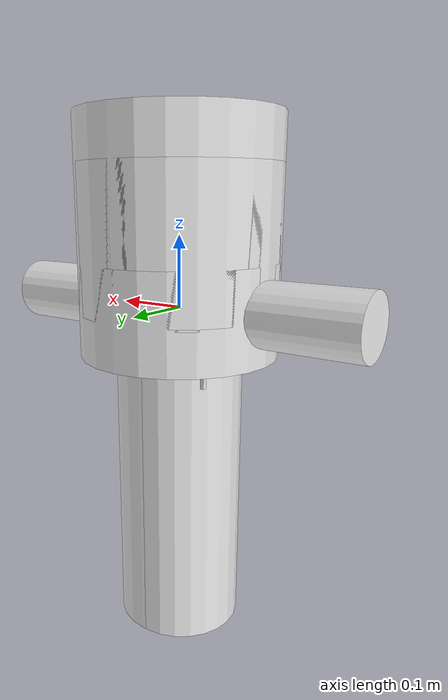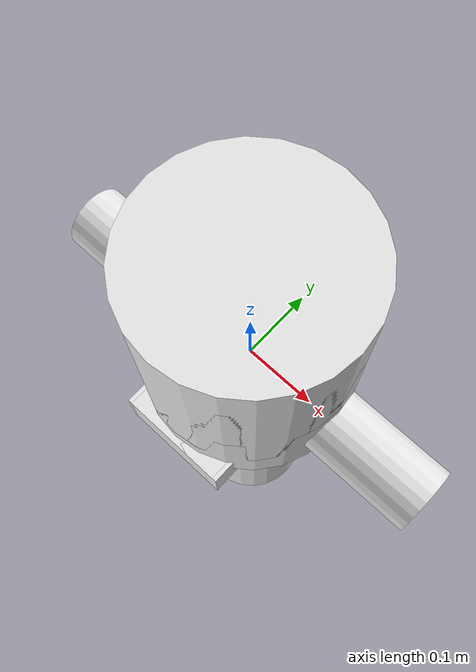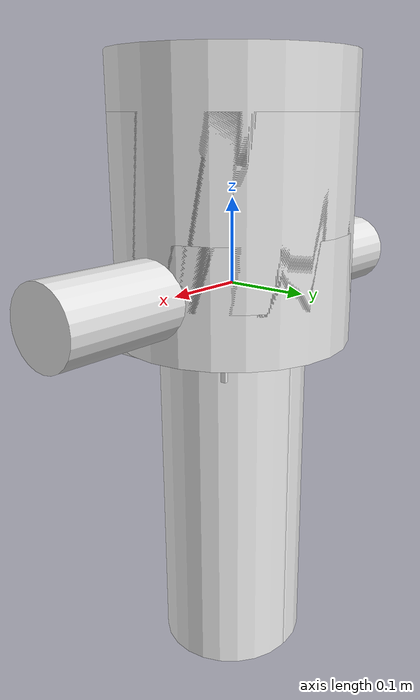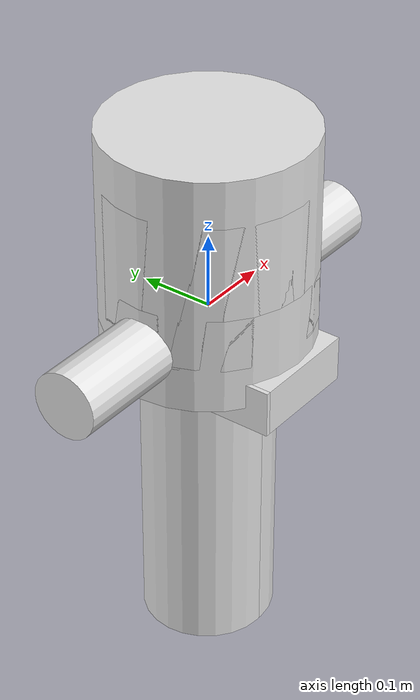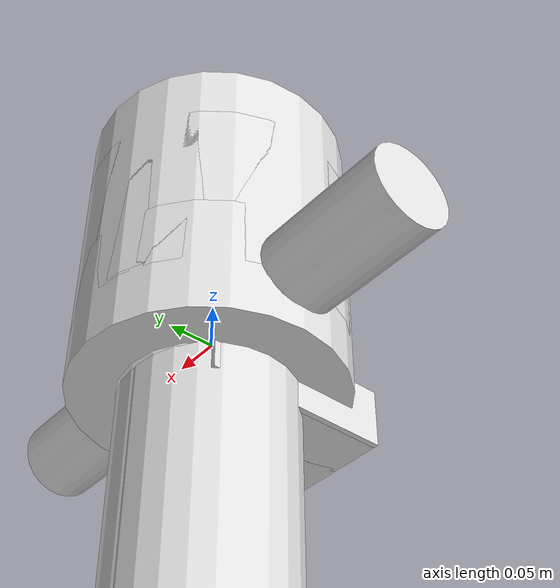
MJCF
<mujoco model="my_model">
    <compiler angle="radian" />
    <size njmax="500" nconmax="100" />
    <worldbody>
        <body name="baseTransX" pos="0 0 0">
            <inertial pos="0 0 0" mass="1" diaginertia="1 1 1" />
            <joint name="baseTransX" pos="0 0 0" axis="1 0 0" type="slide" limited="true" range="0 30" />
            <body name="baseTransY" pos="0 0 0">
                <inertial pos="0 0 0" mass="1" diaginertia="1 1 1" />
                <joint name="baseTransY" pos="0 0 0" axis="0 1 0" type="slide" limited="true" range="0 30" />
                <body name="baseTransZ" pos="0 0 0">
                    <inertial pos="0 0 0" mass="1" diaginertia="1 1 1" />
                    <joint name="baseTransZ" pos="0 0 0" axis="0 0 1" type="slide" limited="true" range="0 30" />
                    <body name="baseRotX" pos="0 0 0">
                        <inertial pos="0 0 0" mass="1" diaginertia="1 1 1" />
                        <joint name="baseRotX" pos="0 0 0" axis="1 0 0" limited="true" range="-3.14 3.14" />
                        <body name="baseRotY" pos="0 0 0">
                            <inertial pos="0 0 0" mass="1" diaginertia="1 1 1" />
                            <joint name="baseRotY" pos="0 0 0" axis="0 1 0" limited="true" range="-3.14 3.14" />
                            <body name="baseRotZ" pos="0 0 0">
                                <inertial pos="0 0 0" mass="1" diaginertia="1 1 1" />
                                <joint name="baseRotZ" pos="0 0 0" axis="0 0 1" limited="true" range="-3.14 3.14" />
                                <geom size="0.14 0.066" type="cylinder" contype="0" conaffinity="0" group="1" rgba="0.9 0.9 0.9 1" />
                                <body name="lHipTransX" pos="0 0 0">
                                    <inertial pos="0 0 0" mass="1" diaginertia="1 1 1" />
                                    <joint name="lHipTransX" pos="0 0 0" axis="1 0 0" type="slide" limited="true" range="0 1" />
                                    <body name="lHipRotX" pos="0 0 0">
                                        <inertial pos="0 0 0" mass="1" diaginertia="1 1 1" />
                                        <joint name="lHipRotX" pos="0 0 0" axis="1 0 0" limited="true" range="-3.14 3.14" />
                                        <body name="lHipRotY" pos="0 0 0">
                                            <inertial pos="0 0 0" mass="1" diaginertia="1 1 1" />
                                            <joint name="lHipRotY" pos="0 0 0" axis="0 1 0" limited="true" range="-3.14 3.14" />
                                            <body name="lHipRotZ" pos="0 0 0">
                                                <inertial pos="0 0 0" mass="1" diaginertia="1 1 1" />
                                                <joint name="lHipRotZ" pos="0 0 0" axis="0 0 1" limited="true" range="-3.14 3.14" />
                                                <geom size="0.0871 0.225" pos="-0.00375 0 -0.25255" type="cylinder" contype="0" conaffinity="0" group="1" rgba="0.9 0.9 0.9 1" />
                                                <body name="lKneeTransZ" pos="0 0 0">
                                                    <inertial pos="0 0 0" mass="1" diaginertia="1 1 1" />
                                                    <joint name="lKneeTransZ" pos="0 0 0" axis="0 0 1" type="slide" limited="true" range="0 1" />
                                                    <body name="lKneeRotX" pos="0 0 0">
                                                        <inertial pos="0 0 0" mass="1" diaginertia="1 1 1" />
                                                        <joint name="lKneeRotX" pos="0 0 0" axis="1 0 0" limited="true" range="-3.14 3.14" />
                                                        <body name="lKneeRotY" pos="0 0 0">
                                                            <inertial pos="0 0 0" mass="1" diaginertia="1 1 1" />
                                                            <joint name="lKneeRotY" pos="0 0 0" axis="0 1 0" limited="true" range="-3.14 3.14" />
                                                            <body name="lKneeRotZ" pos="0 0 0">
                                                                <inertial pos="0 0 0" mass="1" diaginertia="1 1 1" />
                                                                <joint name="lKneeRotZ" pos="0 0 0" axis="0 0 1" limited="true" range="-3.14 3.14" />
                                                                <geom size="0.0685 0.1749" pos="-0.00375 0 -0.20357" type="cylinder" contype="0" conaffinity="0" group="1" rgba="0.9 0.9 0.9 1" />
                                                                <body name="lAnkleTransX" pos="0 0 0">
                                                                    <inertial pos="0 0 0" mass="1" diaginertia="1 1 1" />
                                                                    <joint name="lAnkleTransX" pos="0 0 0" axis="1 0 0" type="slide" limited="true" range="0 1" />
                                                                    <body name="lAnkleTransY" pos="0 0 0">
                                                                        <inertial pos="0 0 0" mass="1" diaginertia="1 1 1" />
                                                                        <joint name="lAnkleTransY" pos="0 0 0" axis="0 1 0" type="slide" limited="true" range="0 1" />
                                                                        <body name="lAnkleTransZ" pos="0 0 0">
                                                                            <inertial pos="0 0 0" mass="1" diaginertia="1 1 1" />
                                                                            <joint name="lAnkleTransZ" pos="0 0 0" axis="0 0 1" type="slide" limited="true" range="0 1" />
                                                                            <body name="lAnkleRotX" pos="0 0 0">
                                                                                <inertial pos="0 0 0" mass="1" diaginertia="1 1 1" />
                                                                                <joint name="lAnkleRotX" pos="0 0 0" axis="1 0 0" limited="true" range="-3.14 3.14" />
                                                                                <body name="lAnkleRotY" pos="0 0 0">
                                                                                    <inertial pos="0 0 0" mass="1" diaginertia="1 1 1" />
                                                                                    <joint name="lAnkleRotY" pos="0 0 0" axis="0 1 0" limited="true" range="-3.14 3.14" />
                                                                                    <body name="lAnkleRotZ" pos="0 0 0">
                                                                                        <inertial pos="0 0 0" mass="1" diaginertia="1 1 1" />
                                                                                        <joint name="lAnkleRotZ" pos="0 0 0" axis="0 0 1" limited="true" range="-3.14 3.14" />
                                                                                        <geom size="0.1 0.0744 0.0315" pos="-0.00303 -0.04782 -0.06326" quat="0.707105 0 0 0.707108" type="box" contype="0" conaffinity="0" group="1" rgba="0.9 0.9 0.9 1" />
                                                                                        <body name="lToeTransY" pos="0 0 0">
                                                                                            <inertial pos="0 0 0" mass="1" diaginertia="1 1 1" />
                                                                                            <joint name="lToeTransY" pos="0 0 0" axis="0 1 0" type="slide" limited="true" range="0 1" />
                                                                                            <body name="lToeTransZ" pos="0 0 0">
                                                                                                <inertial pos="0 0 0" mass="1" diaginertia="1 1 1" />
                                                                                                <joint name="lToeTransZ" pos="0 0 0" axis="0 0 1" type="slide" limited="true" range="0 1" />
                                                                                                <body name="lToeRotX" pos="0 0 0">
                                                                                                    <inertial pos="0 0 0" mass="1" diaginertia="1 1 1" />
                                                                                                    <joint name="lToeRotX" pos="0 0 0" axis="1 0 0" limited="true" range="-3.14 3.14" />
                                                                                                    <body name="lToeRotY" pos="0 0 0">
                                                                                                        <inertial pos="0 0 0" mass="1" diaginertia="1 1 1" />
                                                                                                        <joint name="lToeRotY" pos="0 0 0" axis="0 1 0" limited="true" range="-3.14 3.14" />
                                                                                                        <body name="lToeRotZ" pos="0 0 0">
                                                                                                            <inertial pos="0 0 0" mass="1" diaginertia="1 1 1" />
                                                                                                            <joint name="lToeRotZ" pos="0 0 0" axis="0 0 1" limited="true" range="-3.14 3.14" />
                                                                                                            <geom size="0.025 0.0744 0.0315" pos="-0.00303 -0.02629 0.00418" quat="0.707105 0 0 0.707108" type="box" contype="0" conaffinity="0" group="1" rgba="0.9 0.9 0.9 1" />
                                                                                                        </body>
                                                                                                    </body>
                                                                                                </body>
                                                                                            </body>
                                                                                        </body>
                                                                                    </body>
                                                                                </body>
                                                                            </body>
                                                                        </body>
                                                                    </body>
                                                                </body>
                                                            </body>
                                                        </body>
                                                    </body>
                                                </body>
                                            </body>
                                        </body>
                                    </body>
                                </body>
                                <body name="pelvisTransZ" pos="0 0 0">
                                    <inertial pos="0 0 0" mass="1" diaginertia="1 1 1" />
                                    <joint name="pelvisTransZ" pos="0 0 0" axis="0 0 1" type="slide" limited="true" range="0 1" />
                                    <body name="pelvisRotX" pos="0 0 0">
                                        <inertial pos="0 0 0" mass="1" diaginertia="1 1 1" />
                                        <joint name="pelvisRotX" pos="0 0 0" axis="1 0 0" limited="true" range="-3.14 3.14" />
                                        <body name="pelvisRotY" pos="0 0 0">
                                            <inertial pos="0 0 0" mass="1" diaginertia="1 1 1" />
                                            <joint name="pelvisRotY" pos="0 0 0" axis="0 1 0" limited="true" range="-3.14 3.14" />
                                            <body name="pelvisRotZ" pos="0 0 0">
                                                <inertial pos="0 0 0" mass="1" diaginertia="1 1 1" />
                                                <joint name="pelvisRotZ" pos="0 0 0" axis="0 0 1" limited="true" range="-3.14 3.14" />
                                                <geom size="0.14 0.099" pos="0 0 0.0951" type="cylinder" contype="0" conaffinity="0" group="1" rgba="0.9 0.9 0.9 1" />
                                                <body name="torsoTransX" pos="0 0 0">
                                                    <inertial pos="0 0 0" mass="1" diaginertia="1 1 1" />
                                                    <joint name="torsoTransX" pos="0 0 0" axis="1 0 0" type="slide" limited="true" range="0 1" />
                                                    <body name="torsoTransY" pos="0 0 0">
                                                        <inertial pos="0 0 0" mass="1" diaginertia="1 1 1" />
                                                        <joint name="torsoTransY" pos="0 0 0" axis="0 1 0" type="slide" limited="true" range="0 1" />
                                                        <body name="torsoTransZ" pos="0 0 0">
                                                            <inertial pos="0 0 0" mass="1" diaginertia="1 1 1" />
                                                            <joint name="torsoTransZ" pos="0 0 0" axis="0 0 1" type="slide" limited="true" range="0 1" />
                                                            <body name="torsoRotX" pos="0 0 0">
                                                                <inertial pos="0 0 0" mass="1" diaginertia="1 1 1" />
                                                                <joint name="torsoRotX" pos="0 0 0" axis="1 0 0" limited="true" range="-3.14 3.14" />
                                                                <body name="torsoRotY" pos="0 0 0">
                                                                    <inertial pos="0 0 0" mass="1" diaginertia="1 1 1" />
                                                                    <joint name="torsoRotY" pos="0 0 0" axis="0 1 0" limited="true" range="-3.14 3.14" />
                                                                    <body name="torsoRotZ" pos="0 0 0">
                                                                        <inertial pos="0 0 0" mass="1" diaginertia="1 1 1" />
                                                                        <joint name="torsoRotZ" pos="0 0 0" axis="0 0 1" limited="true" range="-3.14 3.14" />
                                                                        <geom size="0.14 0.132" pos="0 0 0.12507" type="cylinder" contype="0" conaffinity="0" group="1" rgba="0.9 0.9 0.9 1" />
                                                                        <body name="linnerShoulderTransX" pos="0 0 0">
                                                                            <inertial pos="0 0 0" mass="1" diaginertia="1 1 1" />
                                                                            <joint name="linnerShoulderTransX" pos="0 0 0" axis="1 0 0" type="slide" limited="true" range="0 1" />
                                                                            <body name="linnerShoulderTransY" pos="0 0 0">
                                                                                <inertial pos="0 0 0" mass="1" diaginertia="1 1 1" />
                                                                                <joint name="linnerShoulderTransY" pos="0 0 0" axis="0 1 0" type="slide" limited="true" range="0 1" />
                                                                                <body name="linnerShoulderTransZ" pos="0 0 0">
                                                                                    <inertial pos="0 0 0" mass="1" diaginertia="1 1 1" />
                                                                                    <joint name="linnerShoulderTransZ" pos="0 0 0" axis="0 0 1" type="slide" limited="true" range="0 1" />
                                                                                    <body name="linnerShoulderRotX" pos="0 0 0">
                                                                                        <inertial pos="0 0 0" mass="1" diaginertia="1 1 1" />
                                                                                        <joint name="linnerShoulderRotX" pos="0 0 0" axis="1 0 0" limited="true" range="-3.14 3.14" />
                                                                                        <body name="linnerShoulderRotY" pos="0 0 0">
                                                                                            <inertial pos="0 0 0" mass="1" diaginertia="1 1 1" />
                                                                                            <joint name="linnerShoulderRotY" pos="0 0 0" axis="0 1 0" limited="true" range="-3.14 3.14" />
                                                                                            <body name="linnerShoulderRotZ" pos="0 0 0">
                                                                                                <inertial pos="0 0 0" mass="1" diaginertia="1 1 1" />
                                                                                                <joint name="linnerShoulderRotZ" pos="0 0 0" axis="0 0 1" limited="true" range="-3.14 3.14" />
                                                                                                <body name="lShoulderTransX" pos="0 0 0">
                                                                                                    <inertial pos="0 0 0" mass="1" diaginertia="1 1 1" />
                                                                                                    <joint name="lShoulderTransX" pos="0 0 0" axis="1 0 0" type="slide" limited="true" range="0 1" />
                                                                                                    <body name="lShoulderRotX" pos="0 0 0">
                                                                                                        <inertial pos="0 0 0" mass="1" diaginertia="1 1 1" />
                                                                                                        <joint name="lShoulderRotX" pos="0 0 0" axis="1 0 0" limited="true" range="-3.14 3.14" />
                                                                                                        <body name="lShoulderRotY" pos="0 0 0">
                                                                                                            <inertial pos="0 0 0" mass="1" diaginertia="1 1 1" />
                                                                                                            <joint name="lShoulderRotY" pos="0 0 0" axis="0 1 0" limited="true" range="-3.14 3.14" />
                                                                                                            <body name="lShoulderRotZ" pos="0 0 0">
                                                                                                                <inertial pos="0 0 0" mass="1" diaginertia="1 1 1" />
                                                                                                                <joint name="lShoulderRotZ" pos="0 0 0" axis="0 0 1" limited="true" range="-3.14 3.14" />
                                                                                                                <geom size="0.05617" pos="-0.00282 -3e-05 0.00437" contype="0" conaffinity="0" group="1" rgba="0.9 0.9 0.9 1" />
                                                                                                                <geom size="0.045 0.12375" pos="0.15745 0 0.00437" quat="0.707105 0 0.707108 0" type="cylinder" contype="0" conaffinity="0" group="1" rgba="0.9 0.9 0.9 1" />
                                                                                                                <body name="lElbowTransX" pos="0 0 0">
                                                                                                                    <inertial pos="0 0 0" mass="1" diaginertia="1 1 1" />
                                                                                                                    <joint name="lElbowTransX" pos="0 0 0" axis="1 0 0" type="slide" limited="true" range="0 1" />
                                                                                                                    <body name="lElbowRotX" pos="0 0 0">
                                                                                                                        <inertial pos="0 0 0" mass="1" diaginertia="1 1 1" />
                                                                                                                        <joint name="lElbowRotX" pos="0 0 0" axis="1 0 0" limited="true" range="-3.14 3.14" />
                                                                                                                        <body name="lElbowRotY" pos="0 0 0">
                                                                                                                            <inertial pos="0 0 0" mass="1" diaginertia="1 1 1" />
                                                                                                                            <joint name="lElbowRotY" pos="0 0 0" axis="0 1 0" limited="true" range="-3.14 3.14" />
                                                                                                                            <body name="lElbowRotZ" pos="0 0 0">
                                                                                                                                <inertial pos="0 0 0" mass="1" diaginertia="1 1 1" />
                                                                                                                                <joint name="lElbowRotZ" pos="0 0 0" axis="0 0 1" limited="true" range="-3.14 3.14" />
                                                                                                                                <geom size="0.04 0.1085" pos="0.13503 0 0.00437" quat="0.707105 0 0.707108 0" type="cylinder" contype="0" conaffinity="0" group="1" rgba="0.9 0.9 0.9 1" />
                                                                                                                                <body name="lWristTransX" pos="0 0 0">
                                                                                                                                    <inertial pos="0 0 0" mass="1" diaginertia="1 1 1" />
                                                                                                                                    <joint name="lWristTransX" pos="0 0 0" axis="1 0 0" type="slide" limited="true" range="0 1" />
                                                                                                                                    <body name="lWristTransY" pos="0 0 0">
                                                                                                                                        <inertial pos="0 0 0" mass="1" diaginertia="1 1 1" />
                                                                                                                                        <joint name="lWristTransY" pos="0 0 0" axis="0 1 0" type="slide" limited="true" range="0 1" />
                                                                                                                                        <body name="lWristTransZ" pos="0 0 0">
                                                                                                                                            <inertial pos="0 0 0" mass="1" diaginertia="1 1 1" />
                                                                                                                                            <joint name="lWristTransZ" pos="0 0 0" axis="0 0 1" type="slide" limited="true" range="0 1" />
                                                                                                                                            <body name="lWristRotX" pos="0 0 0">
                                                                                                                                                <inertial pos="0 0 0" mass="1" diaginertia="1 1 1" />
                                                                                                                                                <joint name="lWristRotX" pos="0 0 0" axis="1 0 0" limited="true" range="-3.14 3.14" />
                                                                                                                                                <body name="lWristRotY" pos="0 0 0">
                                                                                                                                                    <inertial pos="0 0 0" mass="1" diaginertia="1 1 1" />
                                                                                                                                                    <joint name="lWristRotY" pos="0 0 0" axis="0 1 0" limited="true" range="-3.14 3.14" />
                                                                                                                                                    <body name="lWristRotZ" pos="0 0 0">
                                                                                                                                                        <inertial pos="0 0 0" mass="1" diaginertia="1 1 1" />
                                                                                                                                                        <joint name="lWristRotZ" pos="0 0 0" axis="0 0 1" limited="true" range="-3.14 3.14" />
                                                                                                                                                        <geom size="0.035 0.05 0.0125" pos="0.08708 0 0.00437" quat="0.707105 0 0 0.707108" type="box" contype="0" conaffinity="0" group="1" rgba="0.9 0.9 0.9 1" />
                                                                                                                                                    </body>
                                                                                                                                                </body>
                                                                                                                                            </body>
                                                                                                                                        </body>
                                                                                                                                    </body>
                                                                                                                                </body>
                                                                                                                            </body>
                                                                                                                        </body>
                                                                                                                    </body>
                                                                                                                </body>
                                                                                                            </body>
                                                                                                        </body>
                                                                                                    </body>
                                                                                                </body>
                                                                                            </body>
                                                                                        </body>
                                                                                    </body>
                                                                                </body>
                                                                            </body>
                                                                        </body>
                                                                        <body name="neckTransZ" pos="0 0 0">
                                                                            <inertial pos="0 0 0" mass="1" diaginertia="1 1 1" />
                                                                            <joint name="neckTransZ" pos="0 0 0" axis="0 0 1" type="slide" limited="true" range="0 1" />
                                                                            <body name="neckRotX" pos="0 0 0">
                                                                                <inertial pos="0 0 0" mass="1" diaginertia="1 1 1" />
                                                                                <joint name="neckRotX" pos="0 0 0" axis="1 0 0" limited="true" range="-3.14 3.14" />
                                                                                <body name="neckRotY" pos="0 0 0">
                                                                                    <inertial pos="0 0 0" mass="1" diaginertia="1 1 1" />
                                                                                    <joint name="neckRotY" pos="0 0 0" axis="0 1 0" limited="true" range="-3.14 3.14" />
                                                                                    <body name="neckRotZ" pos="0 0 0">
                                                                                        <inertial pos="0 0 0" mass="1" diaginertia="1 1 1" />
                                                                                        <joint name="neckRotZ" pos="0 0 0" axis="0 0 1" limited="true" range="-3.14 3.14" />
                                                                                        <geom size="0.056 0.022" pos="0 0 0.04533" type="cylinder" contype="0" conaffinity="0" group="1" rgba="0.9 0.9 0.9 1" />
                                                                                        <body name="headTransY" pos="0 0 0">
                                                                                            <inertial pos="0 0 0" mass="1" diaginertia="1 1 1" />
                                                                                            <joint name="headTransY" pos="0 0 0" axis="0 1 0" type="slide" limited="true" range="0 1" />
                                                                                            <body name="headTransZ" pos="0 0 0">
                                                                                                <inertial pos="0 0 0" mass="1" diaginertia="1 1 1" />
                                                                                                <joint name="headTransZ" pos="0 0 0" axis="0 0 1" type="slide" limited="true" range="0 1" />
                                                                                                <body name="headRotX" pos="0 0 0">
                                                                                                    <inertial pos="0 0 0" mass="1" diaginertia="1 1 1" />
                                                                                                    <joint name="headRotX" pos="0 0 0" axis="1 0 0" limited="true" range="-3.14 3.14" />
                                                                                                    <body name="headRotY" pos="0 0 0">
                                                                                                        <inertial pos="0 0 0" mass="1" diaginertia="1 1 1" />
                                                                                                        <joint name="headRotY" pos="0 0 0" axis="0 1 0" limited="true" range="-3.14 3.14" />
                                                                                                        <body name="headRotZ" pos="0 0 0">
                                                                                                            <inertial pos="0 0 0" mass="1" diaginertia="1 1 1" />
                                                                                                            <joint name="headRotZ" pos="0 0 0" axis="0 0 1" limited="true" range="-3.14 3.14" />
                                                                                                            <geom size="0.13" pos="0 0.00075 0.02589" contype="0" conaffinity="0" group="1" rgba="0.9 0.9 0.9 1" />
                                                                                                        </body>
                                                                                                    </body>
                                                                                                </body>
                                                                                            </body>
                                                                                        </body>
                                                                                    </body>
                                                                                </body>
                                                                            </body>
                                                                        </body>
                                                                        <body name="rinnerShoulderTransX" pos="0 0 0">
                                                                            <inertial pos="0 0 0" mass="1" diaginertia="1 1 1" />
                                                                            <joint name="rinnerShoulderTransX" pos="0 0 0" axis="1 0 0" type="slide" limited="true" range="0 1" />
                                                                            <body name="rinnerShoulderTransY" pos="0 0 0">
                                                                                <inertial pos="0 0 0" mass="1" diaginertia="1 1 1" />
                                                                                <joint name="rinnerShoulderTransY" pos="0 0 0" axis="0 1 0" type="slide" limited="true" range="0 1" />
                                                                                <body name="rinnerShoulderTransZ" pos="0 0 0">
                                                                                    <inertial pos="0 0 0" mass="1" diaginertia="1 1 1" />
                                                                                    <joint name="rinnerShoulderTransZ" pos="0 0 0" axis="0 0 1" type="slide" limited="true" range="0 1" />
                                                                                    <body name="rinnerShoulderRotX" pos="0 0 0">
                                                                                        <inertial pos="0 0 0" mass="1" diaginertia="1 1 1" />
                                                                                        <joint name="rinnerShoulderRotX" pos="0 0 0" axis="1 0 0" limited="true" range="-3.14 3.14" />
                                                                                        <body name="rinnerShoulderRotY" pos="0 0 0">
                                                                                            <inertial pos="0 0 0" mass="1" diaginertia="1 1 1" />
                                                                                            <joint name="rinnerShoulderRotY" pos="0 0 0" axis="0 1 0" limited="true" range="-3.14 3.14" />
                                                                                            <body name="rinnerShoulderRotZ" pos="0 0 0">
                                                                                                <inertial pos="0 0 0" mass="1" diaginertia="1 1 1" />
                                                                                                <joint name="rinnerShoulderRotZ" pos="0 0 0" axis="0 0 1" limited="true" range="-3.14 3.14" />
                                                                                                <body name="rShoulderTransX" pos="0 0 0">
                                                                                                    <inertial pos="0 0 0" mass="1" diaginertia="1 1 1" />
                                                                                                    <joint name="rShoulderTransX" pos="0 0 0" axis="1 0 0" type="slide" limited="true" range="0 1" />
                                                                                                    <body name="rShoulderRotX" pos="0 0 0">
                                                                                                        <inertial pos="0 0 0" mass="1" diaginertia="1 1 1" />
                                                                                                        <joint name="rShoulderRotX" pos="0 0 0" axis="1 0 0" limited="true" range="-3.14 3.14" />
                                                                                                        <body name="rShoulderRotY" pos="0 0 0">
                                                                                                            <inertial pos="0 0 0" mass="1" diaginertia="1 1 1" />
                                                                                                            <joint name="rShoulderRotY" pos="0 0 0" axis="0 1 0" limited="true" range="-3.14 3.14" />
                                                                                                            <body name="rShoulderRotZ" pos="0 0 0">
                                                                                                                <inertial pos="0 0 0" mass="1" diaginertia="1 1 1" />
                                                                                                                <joint name="rShoulderRotZ" pos="0 0 0" axis="0 0 1" limited="true" range="-3.14 3.14" />
                                                                                                                <geom size="0.05617" pos="0.00165 -3e-05 0.00437" contype="0" conaffinity="0" group="1" rgba="0.9 0.9 0.9 1" />
                                                                                                                <geom size="0.045 0.12375" pos="-0.15835 0 0.00437" quat="0.707105 0 0.707108 0" type="cylinder" contype="0" conaffinity="0" group="1" rgba="0.9 0.9 0.9 1" />
                                                                                                                <body name="rElbowTransX" pos="0 0 0">
                                                                                                                    <inertial pos="0 0 0" mass="1" diaginertia="1 1 1" />
                                                                                                                    <joint name="rElbowTransX" pos="0 0 0" axis="1 0 0" type="slide" limited="true" range="0 1" />
                                                                                                                    <body name="rElbowRotX" pos="0 0 0">
                                                                                                                        <inertial pos="0 0 0" mass="1" diaginertia="1 1 1" />
                                                                                                                        <joint name="rElbowRotX" pos="0 0 0" axis="1 0 0" limited="true" range="-3.14 3.14" />
                                                                                                                        <body name="rElbowRotY" pos="0 0 0">
                                                                                                                            <inertial pos="0 0 0" mass="1" diaginertia="1 1 1" />
                                                                                                                            <joint name="rElbowRotY" pos="0 0 0" axis="0 1 0" limited="true" range="-3.14 3.14" />
                                                                                                                            <body name="rElbowRotZ" pos="0 0 0">
                                                                                                                                <inertial pos="0 0 0" mass="1" diaginertia="1 1 1" />
                                                                                                                                <joint name="rElbowRotZ" pos="0 0 0" axis="0 0 1" limited="true" range="-3.14 3.14" />
                                                                                                                                <geom size="0.04 0.1085" pos="-0.1362 0 0.00437" quat="0.707105 0 0.707108 0" type="cylinder" contype="0" conaffinity="0" group="1" rgba="0.9 0.9 0.9 1" />
                                                                                                                                <body name="rWristTransX" pos="0 0 0">
                                                                                                                                    <inertial pos="0 0 0" mass="1" diaginertia="1 1 1" />
                                                                                                                                    <joint name="rWristTransX" pos="0 0 0" axis="1 0 0" type="slide" limited="true" range="0 1" />
                                                                                                                                    <body name="rWristTransY" pos="0 0 0">
                                                                                                                                        <inertial pos="0 0 0" mass="1" diaginertia="1 1 1" />
                                                                                                                                        <joint name="rWristTransY" pos="0 0 0" axis="0 1 0" type="slide" limited="true" range="0 1" />
                                                                                                                                        <body name="rWristTransZ" pos="0 0 0">
                                                                                                                                            <inertial pos="0 0 0" mass="1" diaginertia="1 1 1" />
                                                                                                                                            <joint name="rWristTransZ" pos="0 0 0" axis="0 0 1" type="slide" limited="true" range="0 1" />
                                                                                                                                            <body name="rWristRotX" pos="0 0 0">
                                                                                                                                                <inertial pos="0 0 0" mass="1" diaginertia="1 1 1" />
                                                                                                                                                <joint name="rWristRotX" pos="0 0 0" axis="1 0 0" limited="true" range="-3.14 3.14" />
                                                                                                                                                <body name="rWristRotY" pos="0 0 0">
                                                                                                                                                    <inertial pos="0 0 0" mass="1" diaginertia="1 1 1" />
                                                                                                                                                    <joint name="rWristRotY" pos="0 0 0" axis="0 1 0" limited="true" range="-3.14 3.14" />
                                                                                                                                                    <body name="rWristRotZ" pos="0 0 0">
                                                                                                                                                        <inertial pos="0 0 0" mass="1" diaginertia="1 1 1" />
                                                                                                                                                        <joint name="rWristRotZ" pos="0 0 0" axis="0 0 1" limited="true" range="-3.14 3.14" />
                                                                                                                                                        <geom size="0.035 0.05 0.0125" pos="-0.08825 0 0.00437" quat="0.707105 0 0 0.707108" type="box" contype="0" conaffinity="0" group="1" rgba="0.9 0.9 0.9 1" />
                                                                                                                                                    </body>
                                                                                                                                                </body>
                                                                                                                                            </body>
                                                                                                                                        </body>
                                                                                                                                    </body>
                                                                                                                                </body>
                                                                                                                            </body>
                                                                                                                        </body>
                                                                                                                    </body>
                                                                                                                </body>
                                                                                                            </body>
                                                                                                        </body>
                                                                                                    </body>
                                                                                                </body>
                                                                                            </body>
                                                                                        </body>
                                                                                    </body>
                                                                                </body>
                                                                            </body>
                                                                        </body>
                                                                    </body>
                                                                </body>
                                                            </body>
                                                        </body>
                                                    </body>
                                                </body>
                                            </body>
                                        </body>
                                    </body>
                                </body>
                                <body name="rHipTransX" pos="0 0 0">
                                    <inertial pos="0 0 0" mass="1" diaginertia="1 1 1" />
                                    <joint name="rHipTransX" pos="0 0 0" axis="1 0 0" type="slide" limited="true" range="0 1" />
                                    <body name="rHipRotX" pos="0 0 0">
                                        <inertial pos="0 0 0" mass="1" diaginertia="1 1 1" />
                                        <joint name="rHipRotX" pos="0 0 0" axis="1 0 0" limited="true" range="-3.14 3.14" />
                                        <body name="rHipRotY" pos="0 0 0">
                                            <inertial pos="0 0 0" mass="1" diaginertia="1 1 1" />
                                            <joint name="rHipRotY" pos="0 0 0" axis="0 1 0" limited="true" range="-3.14 3.14" />
                                            <body name="rHipRotZ" pos="0 0 0">
                                                <inertial pos="0 0 0" mass="1" diaginertia="1 1 1" />
                                                <joint name="rHipRotZ" pos="0 0 0" axis="0 0 1" limited="true" range="-3.14 3.14" />
                                                <geom size="0.0871 0.225" pos="0.00375 0 -0.25255" type="cylinder" contype="0" conaffinity="0" group="1" rgba="0.9 0.9 0.9 1" />
                                                <body name="rKneeTransZ" pos="0 0 0">
                                                    <inertial pos="0 0 0" mass="1" diaginertia="1 1 1" />
                                                    <joint name="rKneeTransZ" pos="0 0 0" axis="0 0 1" type="slide" limited="true" range="0 1" />
                                                    <body name="rKneeRotX" pos="0 0 0">
                                                        <inertial pos="0 0 0" mass="1" diaginertia="1 1 1" />
                                                        <joint name="rKneeRotX" pos="0 0 0" axis="1 0 0" limited="true" range="-3.14 3.14" />
                                                        <body name="rKneeRotY" pos="0 0 0">
                                                            <inertial pos="0 0 0" mass="1" diaginertia="1 1 1" />
                                                            <joint name="rKneeRotY" pos="0 0 0" axis="0 1 0" limited="true" range="-3.14 3.14" />
                                                            <body name="rKneeRotZ" pos="0 0 0">
                                                                <inertial pos="0 0 0" mass="1" diaginertia="1 1 1" />
                                                                <joint name="rKneeRotZ" pos="0 0 0" axis="0 0 1" limited="true" range="-3.14 3.14" />
                                                                <geom size="0.0685 0.1749" pos="0.00375 0 -0.20357" type="cylinder" contype="0" conaffinity="0" group="1" rgba="0.9 0.9 0.9 1" />
                                                                <body name="rAnkleTransX" pos="0 0 0">
                                                                    <inertial pos="0 0 0" mass="1" diaginertia="1 1 1" />
                                                                    <joint name="rAnkleTransX" pos="0 0 0" axis="1 0 0" type="slide" limited="true" range="0 1" />
                                                                    <body name="rAnkleTransY" pos="0 0 0">
                                                                        <inertial pos="0 0 0" mass="1" diaginertia="1 1 1" />
                                                                        <joint name="rAnkleTransY" pos="0 0 0" axis="0 1 0" type="slide" limited="true" range="0 1" />
                                                                        <body name="rAnkleTransZ" pos="0 0 0">
                                                                            <inertial pos="0 0 0" mass="1" diaginertia="1 1 1" />
                                                                            <joint name="rAnkleTransZ" pos="0 0 0" axis="0 0 1" type="slide" limited="true" range="0 1" />
                                                                            <body name="rAnkleRotX" pos="0 0 0">
                                                                                <inertial pos="0 0 0" mass="1" diaginertia="1 1 1" />
                                                                                <joint name="rAnkleRotX" pos="0 0 0" axis="1 0 0" limited="true" range="-3.14 3.14" />
                                                                                <body name="rAnkleRotY" pos="0 0 0">
                                                                                    <inertial pos="0 0 0" mass="1" diaginertia="1 1 1" />
                                                                                    <joint name="rAnkleRotY" pos="0 0 0" axis="0 1 0" limited="true" range="-3.14 3.14" />
                                                                                    <body name="rAnkleRotZ" pos="0 0 0">
                                                                                        <inertial pos="0 0 0" mass="1" diaginertia="1 1 1" />
                                                                                        <joint name="rAnkleRotZ" pos="0 0 0" axis="0 0 1" limited="true" range="-3.14 3.14" />
                                                                                        <geom size="0.1 0.0744 0.0315" pos="0.00303 -0.04782 -0.06326" quat="0.707105 0 0 0.707108" type="box" contype="0" conaffinity="0" group="1" rgba="0.9 0.9 0.9 1" />
                                                                                        <body name="rToeTransY" pos="0 0 0">
                                                                                            <inertial pos="0 0 0" mass="1" diaginertia="1 1 1" />
                                                                                            <joint name="rToeTransY" pos="0 0 0" axis="0 1 0" type="slide" limited="true" range="0 1" />
                                                                                            <body name="rToeTransZ" pos="0 0 0">
                                                                                                <inertial pos="0 0 0" mass="1" diaginertia="1 1 1" />
                                                                                                <joint name="rToeTransZ" pos="0 0 0" axis="0 0 1" type="slide" limited="true" range="0 1" />
                                                                                                <body name="rToeRotX" pos="0 0 0">
                                                                                                    <inertial pos="0 0 0" mass="1" diaginertia="1 1 1" />
                                                                                                    <joint name="rToeRotX" pos="0 0 0" axis="1 0 0" limited="true" range="-3.14 3.14" />
                                                                                                    <body name="rToeRotY" pos="0 0 0">
                                                                                                        <inertial pos="0 0 0" mass="1" diaginertia="1 1 1" />
                                                                                                        <joint name="rToeRotY" pos="0 0 0" axis="0 1 0" limited="true" range="-3.14 3.14" />
                                                                                                        <body name="rToeRotZ" pos="0 0 0">
                                                                                                            <inertial pos="0 0 0" mass="1" diaginertia="1 1 1" />
                                                                                                            <joint name="rToeRotZ" pos="0 0 0" axis="0 0 1" limited="true" range="-3.14 3.14" />
                                                                                                            <geom size="0.025 0.0744 0.0315" pos="0.00303 -0.02629 0.00418" quat="0.707105 0 0 0.707108" type="box" contype="0" conaffinity="0" group="1" rgba="0.9 0.9 0.9 1" />
                                                                                                        </body>
                                                                                                    </body>
                                                                                                </body>
                                                                                            </body>
                                                                                        </body>
                                                                                    </body>
                                                                                </body>
                                                                            </body>
                                                                        </body>
                                                                    </body>
                                                                </body>
                                                            </body>
                                                        </body>
                                                    </body>
                                                </body>
                                            </body>
                                        </body>
                                    </body>
                                </body>
                            </body>
                        </body>
                    </body>
                </body>
            </body>
        </body>
    </worldbody>
</mujoco>
